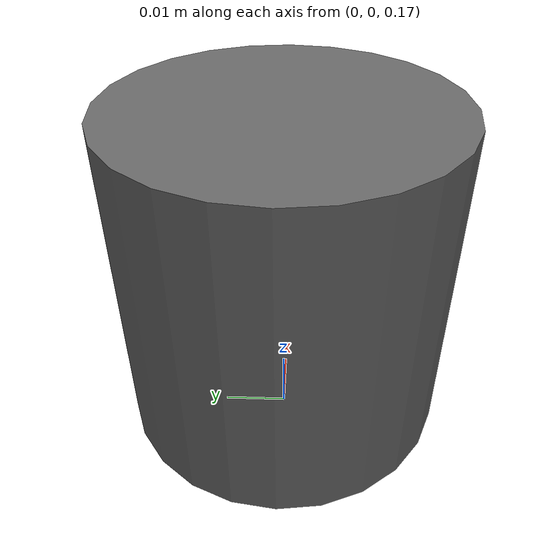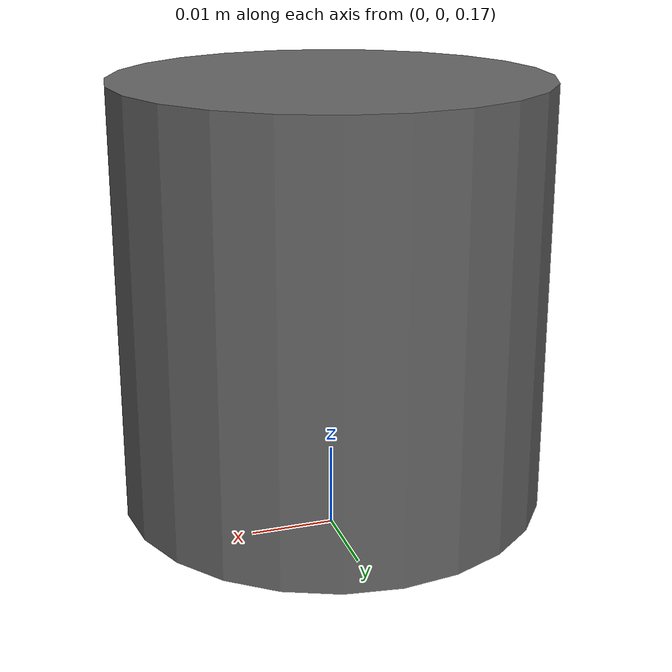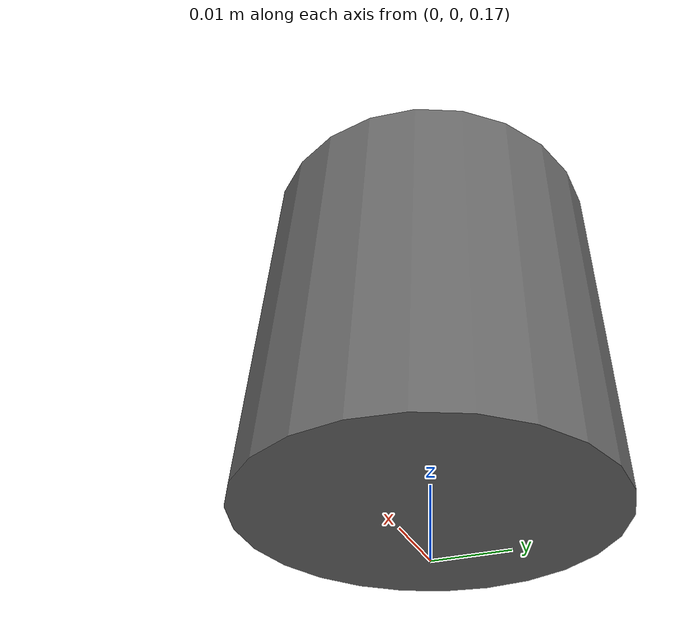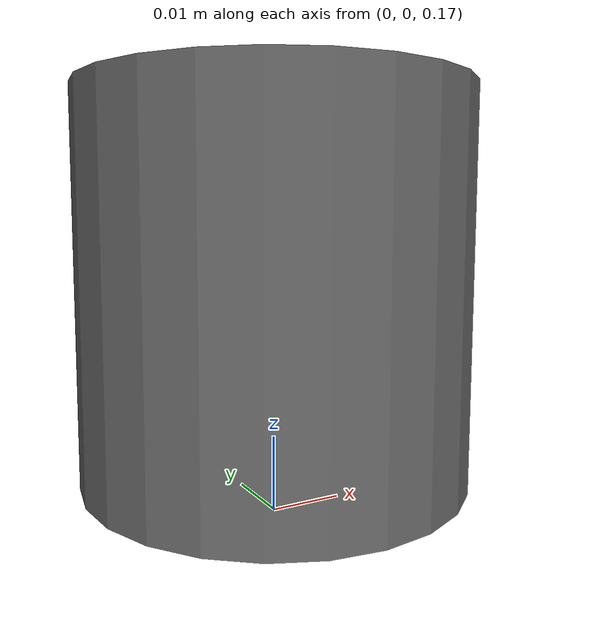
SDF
<?xml version='1.0'?>
<sdf version='1.9'>
  <model name='gimbal_1d_with_camera'>
    <pose>0 0 0.18 0 0 0</pose>
    <link name='base_link'>
      <inertial>
        <mass>0.2</mass>
        <inertia>
          <ixx>0.0001</ixx>
          <ixy>0</ixy>
          <ixz>0</ixz>
          <iyy>0.0001</iyy>
          <iyz>0</iyz>
          <izz>0.0001</izz>
        </inertia>
      </inertial>
      <visual name='base_main_viz'>
        <material>
          <ambient>0.1 0.1 0.1</ambient>
          <diffuse>0.1 0.1 0.1</diffuse>
          <specular>0.01 0.01 0.01 1.0</specular>
        </material>
      </visual>
      <visual name='base_arm_viz'>
        <material>
          <ambient>0.1 0.1 0.1</ambient>
          <diffuse>0.1 0.1 0.1</diffuse>
          <specular>0.01 0.01 0.01 1.0</specular>
        </material>
      </visual>
      <collision name='base_col'>
        <pose>0.01 0.075 -0.025 0 0 0</pose>
        <geometry>
          <box>
            <size>0.1 0.05 0.15</size>
          </box>
        </geometry>
      </collision>
    </link>
    <link name='tilt_link'>
      <inertial>
        <mass>0.01</mass>
        <inertia>
          <ixx>0.00001</ixx>
          <ixy>0</ixy>
          <ixz>0</ixz>
          <iyy>0.00001</iyy>
          <iyz>0</iyz>
          <izz>0.00001</izz>
        </inertia>
      </inertial>
      <visual name='tilt_viz'>
        <pose>0 0 -0.005 0 0 0</pose>
        <material>
          <ambient>0.4 0.4 0.4</ambient>
          <diffuse>0.4 0.4 0.4</diffuse>
          <specular>0.1 0.1 0.1 1.0</specular>
        </material>
      </visual>
      <collision name='tilt_col'>
        <pose>0 0 -0.005 0 0 0</pose>
      </collision>
      <visual name='camera_viz'>
        <pose>0 0 0.02 0 0 0</pose>
        <geometry>
          <cylinder>
            <radius>0.025</radius>
            <length>0.050</length>
          </cylinder>
        </geometry>
        <material>
          <ambient>0.4 0.4 0.4</ambient>
          <diffuse>0.4 0.4 0.4</diffuse>
          <specular>0.1 0.1 0.1 1.0</specular>
        </material>
      </visual>
      <collision name='camera_col'>
        <pose>0 0 0.02 0 0 0</pose>
        <geometry>
          <cylinder>
            <radius>0.025</radius>
            <length>0.050</length>
          </cylinder>
        </geometry>
      </collision>
      <sensor name="rs_front" type="rgbd_camera">
        <pose degrees="true">0 0 0 -90 -90 0</pose>
        <always_on>1</always_on>
        <update_rate>30</update_rate>
        <camera name="rs_front">
          <horizontal_fov>1.50098</horizontal_fov>
          <lens>
            <intrinsics>
              <!-- fx = fy = width / ( 2 * tan (hfov / 2 ) ) -->
              <fx>343.159</fx>
              <fy>343.159</fy>
              <!-- cx = ( width - 1 ) / 2 -->
              <cx>319.5</cx>
              <!-- cy = ( height - 1 ) / 2 -->
              <cy>179.5</cy>
              <s>0</s>
            </intrinsics>
          </lens>
          <distortion>
            <k1>0.0</k1>
            <k2>0.0</k2>
            <k3>0.0</k3>
            <p1>0.0</p1>
            <p2>0.0</p2>
            <center>0.5 0.5</center>
          </distortion>
          <image>
            <width>640</width>
            <height>360</height>
            <format>R8G8B8</format>
          </image>
          <clip>
            <near>0.01</near>
            <far>300</far>
          </clip>
          <depth_camera>
            <clip>
              <near>0.1</near>
              <far>10</far>
            </clip>
          </depth_camera>
          <noise>
            <type>gaussian</type>
            <mean>0</mean>
            <stddev>0.007</stddev>
          </noise>
        </camera>
      </sensor>
    </link>
    <joint name='tilt_joint' type='revolute'>
      <parent>base_link</parent>
      <child>tilt_link</child>
      <axis>
        <xyz>1 0 0</xyz>
        <dynamics>
          <damping>0.01</damping>
        </dynamics>
        <limit>
          <lower>-3.1415926</lower>
          <upper>3.1415926</upper>
        </limit>
      </axis>
      <pose>0 0 0.02 0 0 0</pose>
    </joint>
  </model>
</sdf>
